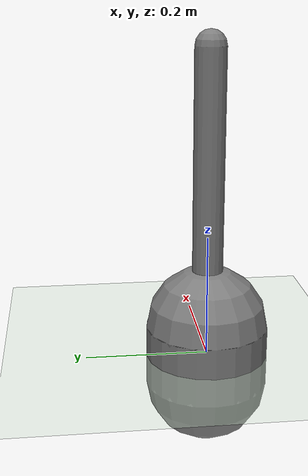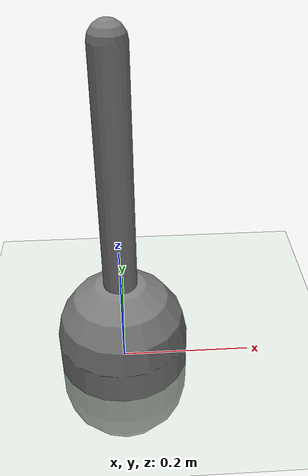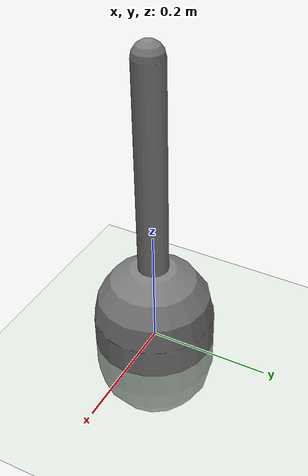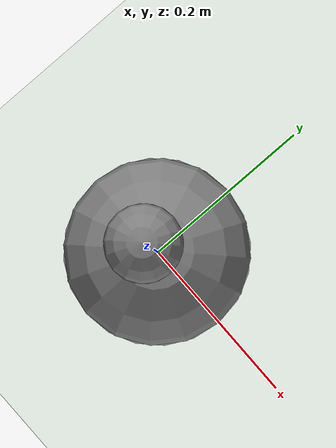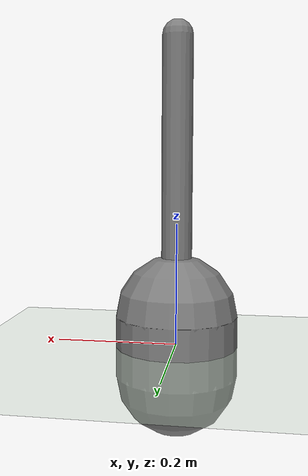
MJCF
<mujoco model="cartpole">
  <compiler angle="radian" coordinate="local" inertiafromgeom="true"/>
  <option integrator="RK4" timestep="0.01"/>

  <asset>
    <texture name="texplane" type="2d" builtin="checker" rgb1="0 0 0" rgb2=".8 .8 .8" width="100" height="100"/>
    <material name="MatPlane" reflectance="0.5" texture="texplane" texuniform="true" texrepeat="10 10"/>
  </asset>

  <default>
    <joint armature="0" damping="0" limited="true"/>
    <geom contype="0" conaffinity="0" condim="1" friction="0.7 0.1 0.1" density="5" margin="0.001"/>
  </default>

  <worldbody>
    <light cutoff="100" diffuse="1 1 1" dir="-0 0 -1.3" directional="true" exponent="1" pos="0 0 1.3" specular=".1 .1 .1"/>
    <geom conaffinity="1" condim="3" material="MatPlane" name="floor" pos="0 0 0" rgba="0.8 0.9 0.8 1" size="40 40 40" type="plane"/>

    <body name="cart" pos="0 0 0">
      <joint axis="1 0 0" damping="0.0" limited="true" name="slider" pos="0 0 0" range="-2.4 2.4" type="slide"/>
      <geom name="cart" pos="0 0 0" size="0.1 0.05" type="capsule" density="400"/>
      <body name="pole" pos="0 0 0">
        <joint axis="0 1 0" damping="0.0" name="hinge" pos="0 0 0" range="-0.2094 0.2094" type="hinge"/> <!-- +/- 12 degrees -->
        <geom fromto="0 0 0 0 0 0.5" name="pole" size="0.025" type="capsule" density="100"/>
      </body>
    </body>
  </worldbody>

  <actuator>
    <motor ctrllimited="true" ctrlrange="-100.0 100.0" gear="100" joint="slider" name="slide"/>
  </actuator>
</mujoco>
